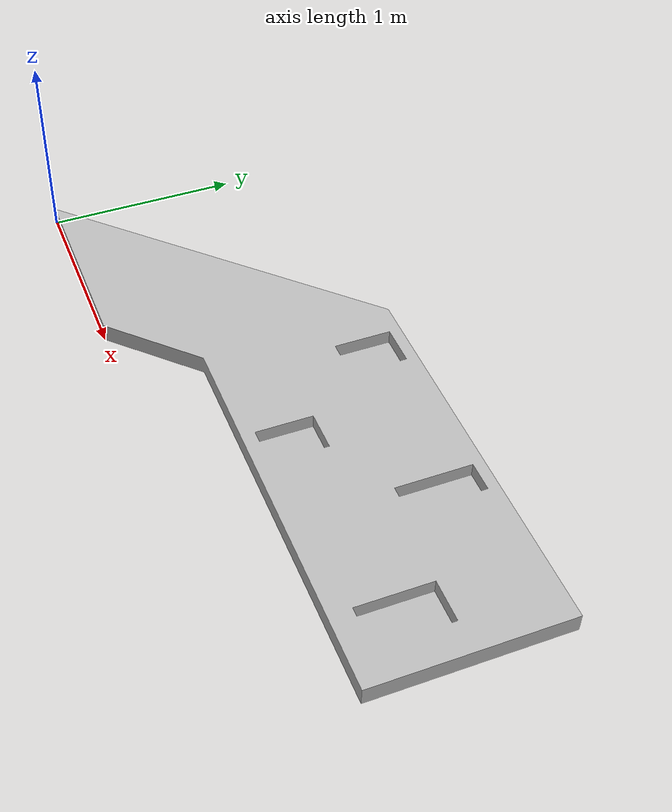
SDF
<?xml version="1.0" ?>
<sdf version="1.4">
<model name="hole_terrain">
<static>true</static>
<link name="link">
<pose>0 0 0 0 0 0</pose>
<collision name="collision"> <geometry> <mesh> <uri>model://hole_terrain/mesh/hole_terrain.STL</uri> <scale>0.001 0.001 0.001</scale> </mesh> </geometry> </collision>
<visual name="visual">       <geometry> <mesh> <uri>model://hole_terrain/mesh/hole_terrain.STL</uri> <scale>0.001 0.001 0.001</scale> </mesh> </geometry> </visual>
</link>
</model>
</sdf>
